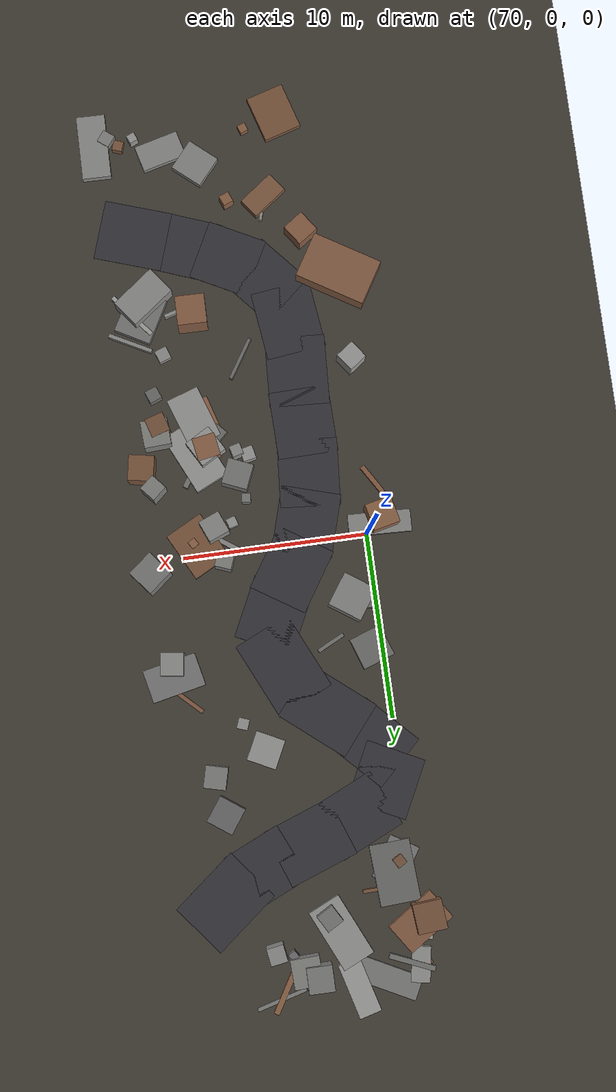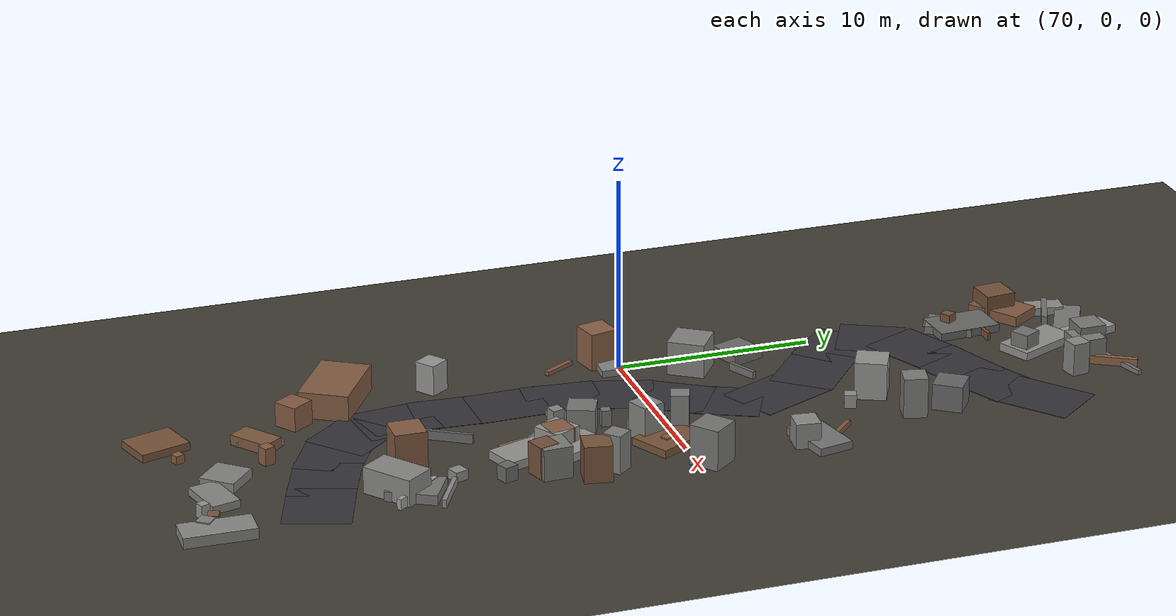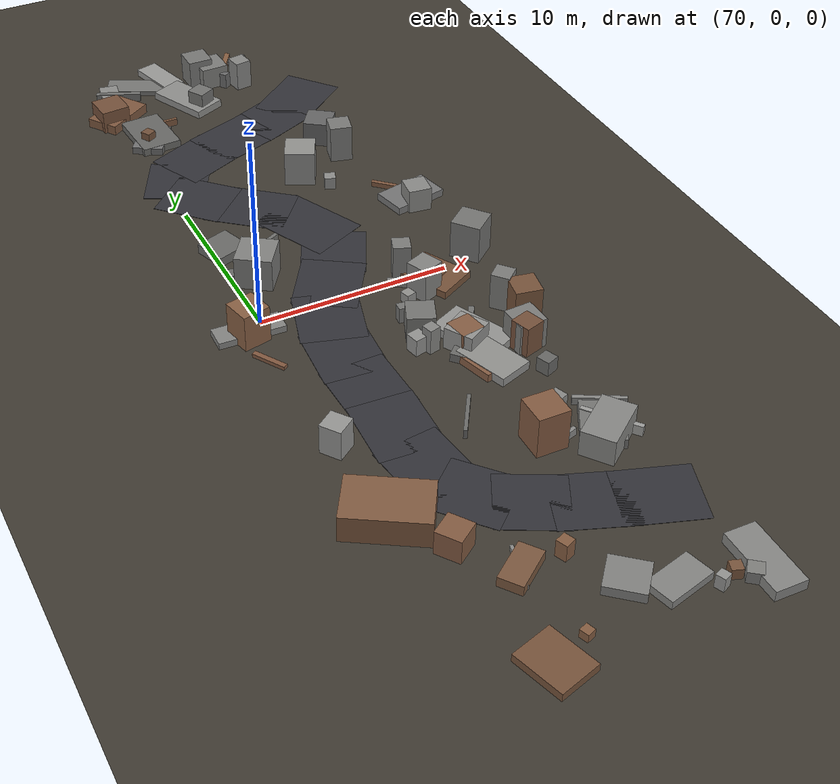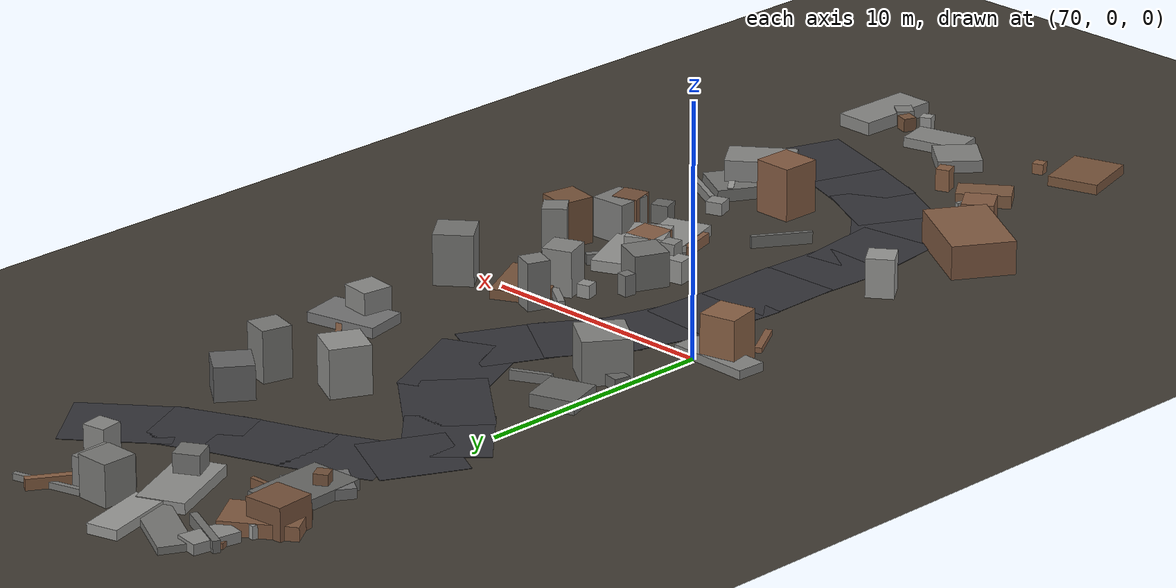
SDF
<sdf version="1.6">
 <world name="navitas_arena">
  <model name="ground_plane">
   <static>true</static>
   <link name="link">
    <collision name="collision">
     <geometry><plane><normal>0 0 1</normal><size>400 400</size></plane></geometry>
     <surface><friction><ode><mu>0.620</mu><mu2>0.620</mu2></ode></friction></surface>
    </collision>
    <visual name="visual">
     <cast_shadows>false</cast_shadows>
     <geometry><plane><normal>0 0 1</normal><size>400 400</size></plane></geometry>
     <material><ambient>0.250 0.230 0.200 1</ambient><diffuse>0.250 0.230 0.200 1</diffuse></material>
    </visual>
   </link>
  </model>
  <model name="road_zor_1_4">
   <static>true</static>
   <pose>80.456 -18.160 0.040 0 0 2.815</pose>
   <link name="link">
    <collision name="col"><geometry><box><size>3.739 3.280 0.020</size></box></geometry></collision>
    <visual name="vis">
     <geometry><box><size>3.739 3.280 0.020</size></box></geometry>
     <material><ambient>0.20 0.20 0.22 1</ambient><diffuse>0.20 0.20 0.22 1</diffuse></material>
    </visual>
   </link>
  </model>
  <model name="road_zor_1_5">
   <static>true</static>
   <pose>77.808 -17.214 0.040 0 0 2.781</pose>
   <link name="link">
    <collision name="col"><geometry><box><size>3.685 3.280 0.020</size></box></geometry></collision>
    <visual name="vis">
     <geometry><box><size>3.685 3.280 0.020</size></box></geometry>
     <material><ambient>0.20 0.20 0.22 1</ambient><diffuse>0.20 0.20 0.22 1</diffuse></material>
    </visual>
   </link>
  </model>
  <model name="road_zor_1_6">
   <static>true</static>
   <pose>75.438 -16.169 0.040 0 0 2.663</pose>
   <link name="link">
    <collision name="col"><geometry><box><size>3.304 3.280 0.020</size></box></geometry></collision>
    <visual name="vis">
     <geometry><box><size>3.304 3.280 0.020</size></box></geometry>
     <material><ambient>0.20 0.20 0.22 1</ambient><diffuse>0.20 0.20 0.22 1</diffuse></material>
    </visual>
   </link>
  </model>
  <model name="road_zor_1_7">
   <static>true</static>
   <pose>73.566 -14.688 0.040 0 0 2.285</pose>
   <link name="link">
    <collision name="col"><geometry><box><size>3.356 3.280 0.020</size></box></geometry></collision>
    <visual name="vis">
     <geometry><box><size>3.356 3.280 0.020</size></box></geometry>
     <material><ambient>0.20 0.20 0.22 1</ambient><diffuse>0.20 0.20 0.22 1</diffuse></material>
    </visual>
   </link>
  </model>
  <model name="road_zor_1_8">
   <static>true</static>
   <pose>72.591 -12.340 0.040 0 0 1.690</pose>
   <link name="link">
    <collision name="col"><geometry><box><size>3.760 3.280 0.020</size></box></geometry></collision>
    <visual name="vis">
     <geometry><box><size>3.760 3.280 0.020</size></box></geometry>
     <material><ambient>0.20 0.20 0.22 1</ambient><diffuse>0.20 0.20 0.22 1</diffuse></material>
    </visual>
   </link>
  </model>
  <model name="road_zor_1_9">
   <static>true</static>
   <pose>72.497 -9.460 0.040 0 0 1.518</pose>
   <link name="link">
    <collision name="col"><geometry><box><size>3.824 3.280 0.020</size></box></geometry></collision>
    <visual name="vis">
     <geometry><box><size>3.824 3.280 0.020</size></box></geometry>
     <material><ambient>0.20 0.20 0.22 1</ambient><diffuse>0.20 0.20 0.22 1</diffuse></material>
    </visual>
   </link>
  </model>
  <model name="road_zor_1_10">
   <static>true</static>
   <pose>72.547 -6.600 0.040 0 0 1.590</pose>
   <link name="link">
    <collision name="col"><geometry><box><size>3.701 3.280 0.020</size></box></geometry></collision>
    <visual name="vis">
     <geometry><box><size>3.701 3.280 0.020</size></box></geometry>
     <material><ambient>0.20 0.20 0.22 1</ambient><diffuse>0.20 0.20 0.22 1</diffuse></material>
    </visual>
   </link>
  </model>
  <model name="road_zor_1_11">
   <static>true</static>
   <pose>72.631 -3.800 0.040 0 0 1.492</pose>
   <link name="link">
    <collision name="col"><geometry><box><size>3.709 3.280 0.020</size></box></geometry></collision>
    <visual name="vis">
     <geometry><box><size>3.709 3.280 0.020</size></box></geometry>
     <material><ambient>0.20 0.20 0.22 1</ambient><diffuse>0.20 0.20 0.22 1</diffuse></material>
    </visual>
   </link>
  </model>
  <model name="road_zor_1_12">
   <static>true</static>
   <pose>73.123 -1.117 0.040 0 0 1.282</pose>
   <link name="link">
    <collision name="col"><geometry><box><size>3.577 3.280 0.020</size></box></geometry></collision>
    <visual name="vis">
     <geometry><box><size>3.577 3.280 0.020</size></box></geometry>
     <material><ambient>0.20 0.20 0.22 1</ambient><diffuse>0.20 0.20 0.22 1</diffuse></material>
    </visual>
   </link>
  </model>
  <model name="road_zor_1_13">
   <static>true</static>
   <pose>74.257 1.333 0.040 0 0 0.997</pose>
   <link name="link">
    <collision name="col"><geometry><box><size>3.678 3.280 0.020</size></box></geometry></collision>
    <visual name="vis">
     <geometry><box><size>3.678 3.280 0.020</size></box></geometry>
     <material><ambient>0.20 0.20 0.22 1</ambient><diffuse>0.20 0.20 0.22 1</diffuse></material>
    </visual>
   </link>
  </model>
  <model name="road_zor_1_14">
   <static>true</static>
   <pose>75.582 3.667 0.040 0 0 1.116</pose>
   <link name="link">
    <collision name="col"><geometry><box><size>3.498 3.280 0.020</size></box></geometry></collision>
    <visual name="vis">
     <geometry><box><size>3.498 3.280 0.020</size></box></geometry>
     <material><ambient>0.20 0.20 0.22 1</ambient><diffuse>0.20 0.20 0.22 1</diffuse></material>
    </visual>
   </link>
  </model>
  <model name="road_zor_1_15">
   <static>true</static>
   <pose>75.407 6.453 0.040 0 0 2.002</pose>
   <link name="link">
    <collision name="col"><geometry><box><size>4.466 3.280 0.020</size></box></geometry></collision>
    <visual name="vis">
     <geometry><box><size>4.466 3.280 0.020</size></box></geometry>
     <material><ambient>0.20 0.20 0.22 1</ambient><diffuse>0.20 0.20 0.22 1</diffuse></material>
    </visual>
   </link>
  </model>
  <model name="road_zor_1_16">
   <static>true</static>
   <pose>73.388 9.124 0.040 0 0 2.452</pose>
   <link name="link">
    <collision name="col"><geometry><box><size>4.203 3.280 0.020</size></box></geometry></collision>
    <visual name="vis">
     <geometry><box><size>4.203 3.280 0.020</size></box></geometry>
     <material><ambient>0.20 0.20 0.22 1</ambient><diffuse>0.20 0.20 0.22 1</diffuse></material>
    </visual>
   </link>
  </model>
  <model name="road_zor_1_17">
   <static>true</static>
   <pose>71.168 11.153 0.040 0 0 2.340</pose>
   <link name="link">
    <collision name="col"><geometry><box><size>3.622 3.280 0.020</size></box></geometry></collision>
    <visual name="vis">
     <geometry><box><size>3.622 3.280 0.020</size></box></geometry>
     <material><ambient>0.20 0.20 0.22 1</ambient><diffuse>0.20 0.20 0.22 1</diffuse></material>
    </visual>
   </link>
  </model>
  <model name="road_zor_1_18">
   <static>true</static>
   <pose>70.772 13.228 0.040 0 0 1.106</pose>
   <link name="link">
    <collision name="col"><geometry><box><size>3.354 3.280 0.020</size></box></geometry></collision>
    <visual name="vis">
     <geometry><box><size>3.354 3.280 0.020</size></box></geometry>
     <material><ambient>0.20 0.20 0.22 1</ambient><diffuse>0.20 0.20 0.22 1</diffuse></material>
    </visual>
   </link>
  </model>
  <model name="road_zor_1_19">
   <static>true</static>
   <pose>72.580 14.896 0.040 0 0 0.427</pose>
   <link name="link">
    <collision name="col"><geometry><box><size>3.663 3.280 0.020</size></box></geometry></collision>
    <visual name="vis">
     <geometry><box><size>3.663 3.280 0.020</size></box></geometry>
     <material><ambient>0.20 0.20 0.22 1</ambient><diffuse>0.20 0.20 0.22 1</diffuse></material>
    </visual>
   </link>
  </model>
  <model name="road_zor_1_20">
   <static>true</static>
   <pose>75.253 15.986 0.040 0 0 0.351</pose>
   <link name="link">
    <collision name="col"><geometry><box><size>3.914 3.280 0.020</size></box></geometry></collision>
    <visual name="vis">
     <geometry><box><size>3.914 3.280 0.020</size></box></geometry>
     <material><ambient>0.20 0.20 0.22 1</ambient><diffuse>0.20 0.20 0.22 1</diffuse></material>
    </visual>
   </link>
  </model>
  <model name="road_zor_1_21">
   <static>true</static>
   <pose>77.778 17.002 0.040 0 0 0.422</pose>
   <link name="link">
    <collision name="col"><geometry><box><size>3.333 3.280 0.020</size></box></geometry></collision>
    <visual name="vis">
     <geometry><box><size>3.333 3.280 0.020</size></box></geometry>
     <material><ambient>0.20 0.20 0.22 1</ambient><diffuse>0.20 0.20 0.22 1</diffuse></material>
    </visual>
   </link>
  </model>
  <model name="road_zor_1_22">
   <static>true</static>
   <pose>80.163 18.516 0.040 0 0 0.672</pose>
   <link name="link">
    <collision name="col"><geometry><box><size>4.161 3.280 0.020</size></box></geometry></collision>
    <visual name="vis">
     <geometry><box><size>4.161 3.280 0.020</size></box></geometry>
     <material><ambient>0.20 0.20 0.22 1</ambient><diffuse>0.20 0.20 0.22 1</diffuse></material>
    </visual>
   </link>
  </model>
  <model name="deb_zor_0">
   <static>true</static>
   <pose>73.706 23.845 0.198 0 0 1.835</pose>
   <link name="link">
    <collision name="col"><geometry><box><size>2.981 1.236 0.396</size></box></geometry></collision>
    <visual name="vis">
     <geometry><box><size>2.981 1.236 0.396</size></box></geometry>
     <material><ambient>0.60 0.60 0.59 1</ambient><diffuse>0.60 0.60 0.59 1</diffuse></material>
    </visual>
   </link>
  </model>
  <model name="deb_zor_1">
   <static>true</static>
   <pose>80.424 -7.253 0.815 0 0 1.867</pose>
   <link name="link">
    <collision name="col"><geometry><box><size>1.050 1.050 1.629</size></box></geometry></collision>
    <visual name="vis">
     <geometry><box><size>1.050 1.050 1.629</size></box></geometry>
     <material><ambient>0.46 0.32 0.23 1</ambient><diffuse>0.46 0.32 0.23 1</diffuse></material>
    </visual>
   </link>
  </model>
  <model name="deb_zor_2">
   <static>true</static>
   <pose>73.076 -19.157 0.118 0 0 1.321</pose>
   <link name="link">
    <collision name="col"><geometry><box><size>2.244 0.164 0.235</size></box></geometry></collision>
    <visual name="vis">
     <geometry><box><size>2.244 0.164 0.235</size></box></geometry>
     <material><ambient>0.54 0.54 0.53 1</ambient><diffuse>0.54 0.54 0.53 1</diffuse></material>
    </visual>
   </link>
  </model>
  <model name="deb_zor_10">
   <static>true</static>
   <pose>78.607 -5.482 0.224 0 0 2.003</pose>
   <link name="link">
    <collision name="col"><geometry><box><size>3.492 1.981 0.448</size></box></geometry></collision>
    <visual name="vis">
     <geometry><box><size>3.492 1.981 0.448</size></box></geometry>
     <material><ambient>0.58 0.58 0.57 1</ambient><diffuse>0.58 0.58 0.57 1</diffuse></material>
    </visual>
   </link>
  </model>
  <model name="deb_zor_15">
   <static>true</static>
   <pose>70.560 6.093 0.255 0 0 0.334</pose>
   <link name="link">
    <collision name="col"><geometry><box><size>1.816 1.755 0.510</size></box></geometry></collision>
    <visual name="vis">
     <geometry><box><size>1.816 1.755 0.510</size></box></geometry>
     <material><ambient>0.42 0.42 0.41 1</ambient><diffuse>0.42 0.42 0.41 1</diffuse></material>
    </visual>
   </link>
  </model>
  <model name="deb_zor_24">
   <static>true</static>
   <pose>71.834 -23.963 0.201 0 0 1.858</pose>
   <link name="link">
    <collision name="col"><geometry><box><size>2.560 2.100 0.402</size></box></geometry></collision>
    <visual name="vis">
     <geometry><box><size>2.560 2.100 0.402</size></box></geometry>
     <material><ambient>0.47 0.33 0.23 1</ambient><diffuse>0.47 0.33 0.23 1</diffuse></material>
    </visual>
   </link>
  </model>
  <model name="deb_zor_38">
   <static>true</static>
   <pose>75.502 -10.473 0.241 0 0 1.004</pose>
   <link name="link">
    <collision name="col"><geometry><box><size>2.420 0.179 0.482</size></box></geometry></collision>
    <visual name="vis">
     <geometry><box><size>2.420 0.179 0.482</size></box></geometry>
     <material><ambient>0.42 0.42 0.41 1</ambient><diffuse>0.42 0.42 0.41 1</diffuse></material>
    </visual>
   </link>
  </model>
  <model name="deb_zor_44">
   <static>true</static>
   <pose>77.269 -6.570 0.222 0 0 0.747</pose>
   <link name="link">
    <collision name="col"><geometry><box><size>0.738 0.738 0.445</size></box></geometry></collision>
    <visual name="vis">
     <geometry><box><size>0.738 0.738 0.445</size></box></geometry>
     <material><ambient>0.42 0.42 0.41 1</ambient><diffuse>0.42 0.42 0.41 1</diffuse></material>
    </visual>
   </link>
  </model>
  <model name="deb_zor_47">
   <static>true</static>
   <pose>77.848 23.902 0.127 0 0 0.268</pose>
   <link name="link">
    <collision name="col"><geometry><box><size>2.798 0.203 0.253</size></box></geometry></collision>
    <visual name="vis">
     <geometry><box><size>2.798 0.203 0.253</size></box></geometry>
     <material><ambient>0.48 0.48 0.47 1</ambient><diffuse>0.48 0.48 0.47 1</diffuse></material>
    </visual>
   </link>
  </model>
  <model name="deb_zor_53">
   <static>true</static>
   <pose>69.098 -0.871 0.972 0 0 0.225</pose>
   <link name="link">
    <collision name="col"><geometry><box><size>1.460 1.460 1.943</size></box></geometry></collision>
    <visual name="vis">
     <geometry><box><size>1.460 1.460 1.943</size></box></geometry>
     <material><ambient>0.54 0.38 0.27 1</ambient><diffuse>0.54 0.38 0.27 1</diffuse></material>
    </visual>
   </link>
  </model>
  <model name="deb_zor_56">
   <static>true</static>
   <pose>73.651 -23.292 0.215 0 0 1.920</pose>
   <link name="link">
    <collision name="col"><geometry><box><size>0.452 0.452 0.431</size></box></geometry></collision>
    <visual name="vis">
     <geometry><box><size>0.452 0.452 0.431</size></box></geometry>
     <material><ambient>0.53 0.37 0.26 1</ambient><diffuse>0.53 0.37 0.26 1</diffuse></material>
    </visual>
   </link>
  </model>
  <model name="deb_zor_58">
   <static>true</static>
   <pose>71.288 -17.050 0.618 0 0 0.610</pose>
   <link name="link">
    <collision name="col"><geometry><box><size>1.266 1.266 1.237</size></box></geometry></collision>
    <visual name="vis">
     <geometry><box><size>1.266 1.266 1.237</size></box></geometry>
     <material><ambient>0.52 0.36 0.26 1</ambient><diffuse>0.52 0.36 0.26 1</diffuse></material>
    </visual>
   </link>
  </model>
  <model name="deb_zor_60">
   <static>true</static>
   <pose>77.800 -0.667 0.169 0 0 2.538</pose>
   <link name="link">
    <collision name="col"><geometry><box><size>2.429 0.277 0.337</size></box></geometry></collision>
    <visual name="vis">
     <geometry><box><size>2.429 0.277 0.337</size></box></geometry>
     <material><ambient>0.52 0.52 0.51 1</ambient><diffuse>0.52 0.52 0.51 1</diffuse></material>
    </visual>
   </link>
  </model>
  <model name="deb_zor_62">
   <static>true</static>
   <pose>69.243 -2.937 0.103 0 0 2.116</pose>
   <link name="link">
    <collision name="col"><geometry><box><size>1.807 0.271 0.205</size></box></geometry></collision>
    <visual name="vis">
     <geometry><box><size>1.807 0.271 0.205</size></box></geometry>
     <material><ambient>0.51 0.35 0.25 1</ambient><diffuse>0.51 0.35 0.25 1</diffuse></material>
    </visual>
   </link>
  </model>
  <model name="deb_zor_65">
   <static>true</static>
   <pose>78.118 -1.363 0.920 0 0 1.961</pose>
   <link name="link">
    <collision name="col"><geometry><box><size>1.206 1.206 1.840</size></box></geometry></collision>
    <visual name="vis">
     <geometry><box><size>1.206 1.206 1.840</size></box></geometry>
     <material><ambient>0.52 0.52 0.51 1</ambient><diffuse>0.52 0.52 0.51 1</diffuse></material>
    </visual>
   </link>
  </model>
  <model name="deb_zor_71">
   <static>true</static>
   <pose>76.193 -2.792 0.419 0 0 1.466</pose>
   <link name="link">
    <collision name="col"><geometry><box><size>0.484 0.484 0.838</size></box></geometry></collision>
    <visual name="vis">
     <geometry><box><size>0.484 0.484 0.838</size></box></geometry>
     <material><ambient>0.46 0.46 0.45 1</ambient><diffuse>0.46 0.46 0.45 1</diffuse></material>
    </visual>
   </link>
  </model>
  <model name="deb_zor_80">
   <static>true</static>
   <pose>69.569 20.562 0.634 0 0 1.659</pose>
   <link name="link">
    <collision name="col"><geometry><box><size>1.578 1.578 1.267</size></box></geometry></collision>
    <visual name="vis">
     <geometry><box><size>1.578 1.578 1.267</size></box></geometry>
     <material><ambient>0.46 0.32 0.23 1</ambient><diffuse>0.46 0.32 0.23 1</diffuse></material>
    </visual>
   </link>
  </model>
  <model name="deb_zor_82">
   <static>true</static>
   <pose>72.129 23.532 0.142 0 0 2.669</pose>
   <link name="link">
    <collision name="col"><geometry><box><size>3.473 1.305 0.283</size></box></geometry></collision>
    <visual name="vis">
     <geometry><box><size>3.473 1.305 0.283</size></box></geometry>
     <material><ambient>0.47 0.47 0.46 1</ambient><diffuse>0.47 0.47 0.46 1</diffuse></material>
    </visual>
   </link>
  </model>
  <model name="deb_zor_92">
   <static>true</static>
   <pose>72.712 5.568 0.197 0 0 0.461</pose>
   <link name="link">
    <collision name="col"><geometry><box><size>1.613 0.202 0.393</size></box></geometry></collision>
    <visual name="vis">
     <geometry><box><size>1.613 0.202 0.393</size></box></geometry>
     <material><ambient>0.44 0.44 0.43 1</ambient><diffuse>0.44 0.44 0.43 1</diffuse></material>
    </visual>
   </link>
  </model>
  <model name="deb_zor_96">
   <static>true</static>
   <pose>77.974 9.242 0.334 0 0 1.225</pose>
   <link name="link">
    <collision name="col"><geometry><box><size>0.595 0.595 0.668</size></box></geometry></collision>
    <visual name="vis">
     <geometry><box><size>0.595 0.595 0.668</size></box></geometry>
     <material><ambient>0.56 0.56 0.55 1</ambient><diffuse>0.56 0.56 0.55 1</diffuse></material>
    </visual>
   </link>
  </model>
  <model name="deb_zor_97">
   <static>true</static>
   <pose>81.306 5.599 0.646 0 0 1.445</pose>
   <link name="link">
    <collision name="col"><geometry><box><size>1.233 1.233 1.292</size></box></geometry></collision>
    <visual name="vis">
     <geometry><box><size>1.233 1.233 1.292</size></box></geometry>
     <material><ambient>0.54 0.54 0.53 1</ambient><diffuse>0.54 0.54 0.53 1</diffuse></material>
    </visual>
   </link>
  </model>
  <model name="deb_zor_98">
   <static>true</static>
   <pose>79.656 -11.239 0.252 0 0 0.351</pose>
   <link name="link">
    <collision name="col"><geometry><box><size>0.690 0.690 0.504</size></box></geometry></collision>
    <visual name="vis">
     <geometry><box><size>0.690 0.690 0.504</size></box></geometry>
     <material><ambient>0.54 0.54 0.53 1</ambient><diffuse>0.54 0.54 0.53 1</diffuse></material>
    </visual>
   </link>
  </model>
  <model name="deb_zor_99">
   <static>true</static>
   <pose>81.958 -23.306 0.269 0 0 1.554</pose>
   <link name="link">
    <collision name="col"><geometry><box><size>3.511 1.578 0.538</size></box></geometry></collision>
    <visual name="vis">
     <geometry><box><size>3.511 1.578 0.538</size></box></geometry>
     <material><ambient>0.53 0.53 0.52 1</ambient><diffuse>0.53 0.53 0.52 1</diffuse></material>
    </visual>
   </link>
  </model>
  <model name="deb_zor_100">
   <static>true</static>
   <pose>79.769 11.843 1.027 0 0 1.324</pose>
   <link name="link">
    <collision name="col"><geometry><box><size>1.194 1.194 2.054</size></box></geometry></collision>
    <visual name="vis">
     <geometry><box><size>1.194 1.194 2.054</size></box></geometry>
     <material><ambient>0.48 0.48 0.47 1</ambient><diffuse>0.48 0.48 0.47 1</diffuse></material>
    </visual>
   </link>
  </model>
  <model name="deb_zor_103">
   <static>true</static>
   <pose>72.037 18.867 0.196 0 0 0.024</pose>
   <link name="link">
    <collision name="col"><geometry><box><size>1.611 0.183 0.393</size></box></geometry></collision>
    <visual name="vis">
     <geometry><box><size>1.611 0.183 0.393</size></box></geometry>
     <material><ambient>0.47 0.33 0.23 1</ambient><diffuse>0.47 0.33 0.23 1</diffuse></material>
    </visual>
   </link>
  </model>
  <model name="deb_zor_107">
   <static>true</static>
   <pose>80.459 -9.057 0.385 0 0 1.938</pose>
   <link name="link">
    <collision name="col"><geometry><box><size>0.697 0.697 0.770</size></box></geometry></collision>
    <visual name="vis">
     <geometry><box><size>0.697 0.697 0.770</size></box></geometry>
     <material><ambient>0.41 0.41 0.40 1</ambient><diffuse>0.41 0.41 0.40 1</diffuse></material>
    </visual>
   </link>
  </model>
  <model name="deb_zor_110">
   <static>true</static>
   <pose>70.056 22.309 0.114 0 0 1.939</pose>
   <link name="link">
    <collision name="col"><geometry><box><size>1.661 0.205 0.228</size></box></geometry></collision>
    <visual name="vis">
     <geometry><box><size>1.661 0.205 0.228</size></box></geometry>
     <material><ambient>0.47 0.33 0.24 1</ambient><diffuse>0.47 0.33 0.24 1</diffuse></material>
    </visual>
   </link>
  </model>
  <model name="deb_zor_113">
   <static>true</static>
   <pose>76.535 -21.654 0.246 0 0 2.430</pose>
   <link name="link">
    <collision name="col"><geometry><box><size>1.857 1.798 0.491</size></box></geometry></collision>
    <visual name="vis">
     <geometry><box><size>1.857 1.798 0.491</size></box></geometry>
     <material><ambient>0.51 0.51 0.50 1</ambient><diffuse>0.51 0.51 0.50 1</diffuse></material>
    </visual>
   </link>
  </model>
  <model name="deb_zor_114">
   <static>true</static>
   <pose>73.045 -19.354 0.258 0 0 0.637</pose>
   <link name="link">
    <collision name="col"><geometry><box><size>2.191 1.179 0.516</size></box></geometry></collision>
    <visual name="vis">
     <geometry><box><size>2.191 1.179 0.516</size></box></geometry>
     <material><ambient>0.49 0.35 0.25 1</ambient><diffuse>0.49 0.35 0.25 1</diffuse></material>
    </visual>
   </link>
  </model>
  <model name="deb_zor_116">
   <static>true</static>
   <pose>79.130 -0.568 0.198 0 0 2.048</pose>
   <link name="link">
    <collision name="col"><geometry><box><size>2.794 2.196 0.396</size></box></geometry></collision>
    <visual name="vis">
     <geometry><box><size>2.794 2.196 0.396</size></box></geometry>
     <material><ambient>0.47 0.33 0.23 1</ambient><diffuse>0.47 0.33 0.23 1</diffuse></material>
    </visual>
   </link>
  </model>
  <model name="deb_zor_118">
   <static>true</static>
   <pose>77.809 -13.166 1.071 0 0 1.555</pose>
   <link name="link">
    <collision name="col"><geometry><box><size>1.591 1.591 2.143</size></box></geometry></collision>
    <visual name="vis">
     <geometry><box><size>1.591 1.591 2.143</size></box></geometry>
     <material><ambient>0.52 0.36 0.26 1</ambient><diffuse>0.52 0.36 0.26 1</diffuse></material>
    </visual>
   </link>
  </model>
  <model name="deb_zor_119">
   <static>true</static>
   <pose>75.098 -19.313 0.448 0 0 1.955</pose>
   <link name="link">
    <collision name="col"><geometry><box><size>0.570 0.570 0.895</size></box></geometry></collision>
    <visual name="vis">
     <geometry><box><size>0.570 0.570 0.895</size></box></geometry>
     <material><ambient>0.53 0.37 0.26 1</ambient><diffuse>0.53 0.37 0.26 1</diffuse></material>
    </visual>
   </link>
  </model>
  <model name="deb_zor_126">
   <static>true</static>
   <pose>81.067 7.312 0.139 0 0 2.372</pose>
   <link name="link">
    <collision name="col"><geometry><box><size>2.882 0.226 0.278</size></box></geometry></collision>
    <visual name="vis">
     <geometry><box><size>2.882 0.226 0.278</size></box></geometry>
     <material><ambient>0.50 0.35 0.25 1</ambient><diffuse>0.50 0.35 0.25 1</diffuse></material>
    </visual>
   </link>
  </model>
  <model name="deb_zor_134">
   <static>true</static>
   <pose>77.802 21.422 0.839 0 0 0.163</pose>
   <link name="link">
    <collision name="col"><geometry><box><size>0.923 0.923 1.678</size></box></geometry></collision>
    <visual name="vis">
     <geometry><box><size>0.923 0.923 1.678</size></box></geometry>
     <material><ambient>0.53 0.53 0.52 1</ambient><diffuse>0.53 0.53 0.52 1</diffuse></material>
    </visual>
   </link>
  </model>
  <model name="deb_zor_139">
   <static>true</static>
   <pose>70.904 17.567 0.200 0 0 1.013</pose>
   <link name="link">
    <collision name="col"><geometry><box><size>2.411 1.684 0.400</size></box></geometry></collision>
    <visual name="vis">
     <geometry><box><size>2.411 1.684 0.400</size></box></geometry>
     <material><ambient>0.45 0.45 0.45 1</ambient><diffuse>0.45 0.45 0.45 1</diffuse></material>
    </visual>
   </link>
  </model>
  <model name="deb_zor_141">
   <static>true</static>
   <pose>70.705 17.517 0.420 0 0 0.527</pose>
   <link name="link">
    <collision name="col"><geometry><box><size>0.557 0.557 0.839</size></box></geometry></collision>
    <visual name="vis">
     <geometry><box><size>0.557 0.557 0.839</size></box></geometry>
     <material><ambient>0.45 0.32 0.23 1</ambient><diffuse>0.45 0.32 0.23 1</diffuse></material>
    </visual>
   </link>
  </model>
  <model name="deb_zor_142">
   <static>true</static>
   <pose>81.071 -3.850 0.976 0 0 2.287</pose>
   <link name="link">
    <collision name="col"><geometry><box><size>0.961 0.961 1.952</size></box></geometry></collision>
    <visual name="vis">
     <geometry><box><size>0.961 0.961 1.952</size></box></geometry>
     <material><ambient>0.49 0.49 0.48 1</ambient><diffuse>0.49 0.49 0.48 1</diffuse></material>
    </visual>
   </link>
  </model>
  <model name="deb_zor_143">
   <static>true</static>
   <pose>79.350 -0.748 0.235 0 0 2.130</pose>
   <link name="link">
    <collision name="col"><geometry><box><size>0.437 0.437 0.471</size></box></geometry></collision>
    <visual name="vis">
     <geometry><box><size>0.437 0.437 0.471</size></box></geometry>
     <material><ambient>0.55 0.38 0.27 1</ambient><diffuse>0.55 0.38 0.27 1</diffuse></material>
    </visual>
   </link>
  </model>
  <model name="deb_zor_149">
   <static>true</static>
   <pose>75.786 -5.162 0.455 0 0 1.782</pose>
   <link name="link">
    <collision name="col"><geometry><box><size>0.714 0.714 0.911</size></box></geometry></collision>
    <visual name="vis">
     <geometry><box><size>0.714 0.714 0.911</size></box></geometry>
     <material><ambient>0.58 0.58 0.57 1</ambient><diffuse>0.58 0.58 0.57 1</diffuse></material>
    </visual>
   </link>
  </model>
  <model name="deb_zor_152">
   <static>true</static>
   <pose>74.282 20.858 0.213 0 0 2.000</pose>
   <link name="link">
    <collision name="col"><geometry><box><size>3.533 1.846 0.426</size></box></geometry></collision>
    <visual name="vis">
     <geometry><box><size>3.533 1.846 0.426</size></box></geometry>
     <material><ambient>0.56 0.56 0.55 1</ambient><diffuse>0.56 0.56 0.55 1</diffuse></material>
    </visual>
   </link>
  </model>
  <model name="deb_zor_154">
   <static>true</static>
   <pose>81.345 -12.136 0.206 0 0 2.655</pose>
   <link name="link">
    <collision name="col"><geometry><box><size>2.500 0.217 0.412</size></box></geometry></collision>
    <visual name="vis">
     <geometry><box><size>2.500 0.217 0.412</size></box></geometry>
     <material><ambient>0.53 0.53 0.52 1</ambient><diffuse>0.53 0.53 0.52 1</diffuse></material>
    </visual>
   </link>
  </model>
  <model name="deb_zor_158">
   <static>true</static>
   <pose>77.620 23.546 0.216 0 0 1.028</pose>
   <link name="link">
    <collision name="col"><geometry><box><size>2.436 0.295 0.433</size></box></geometry></collision>
    <visual name="vis">
     <geometry><box><size>2.436 0.295 0.433</size></box></geometry>
     <material><ambient>0.53 0.37 0.26 1</ambient><diffuse>0.53 0.37 0.26 1</diffuse></material>
    </visual>
   </link>
  </model>
  <model name="deb_zor_166">
   <static>true</static>
   <pose>81.807 0.663 1.028 0 0 0.677</pose>
   <link name="link">
    <collision name="col"><geometry><box><size>1.563 1.563 2.056</size></box></geometry></collision>
    <visual name="vis">
     <geometry><box><size>1.563 1.563 2.056</size></box></geometry>
     <material><ambient>0.46 0.46 0.45 1</ambient><diffuse>0.46 0.46 0.45 1</diffuse></material>
    </visual>
   </link>
  </model>
  <model name="deb_zor_175">
   <static>true</static>
   <pose>78.006 -5.820 0.589 0 0 2.088</pose>
   <link name="link">
    <collision name="col"><geometry><box><size>1.539 1.539 1.178</size></box></geometry></collision>
    <visual name="vis">
     <geometry><box><size>1.539 1.539 1.178</size></box></geometry>
     <material><ambient>0.58 0.58 0.57 1</ambient><diffuse>0.58 0.58 0.57 1</diffuse></material>
    </visual>
   </link>
  </model>
  <model name="deb_zor_178">
   <static>true</static>
   <pose>69.204 -0.530 0.175 0 0 3.106</pose>
   <link name="link">
    <collision name="col"><geometry><box><size>3.415 1.196 0.351</size></box></geometry></collision>
    <visual name="vis">
     <geometry><box><size>3.415 1.196 0.351</size></box></geometry>
     <material><ambient>0.52 0.52 0.51 1</ambient><diffuse>0.52 0.52 0.51 1</diffuse></material>
    </visual>
   </link>
  </model>
  <model name="deb_zor_181">
   <static>true</static>
   <pose>79.785 -23.473 0.355 0 0 1.971</pose>
   <link name="link">
    <collision name="col"><geometry><box><size>0.465 0.465 0.711</size></box></geometry></collision>
    <visual name="vis">
     <geometry><box><size>0.465 0.465 0.711</size></box></geometry>
     <material><ambient>0.58 0.58 0.57 1</ambient><diffuse>0.58 0.58 0.57 1</diffuse></material>
    </visual>
   </link>
  </model>
  <model name="deb_zor_182">
   <static>true</static>
   <pose>78.443 -7.558 0.227 0 0 1.899</pose>
   <link name="link">
    <collision name="col"><geometry><box><size>2.937 1.824 0.453</size></box></geometry></collision>
    <visual name="vis">
     <geometry><box><size>2.937 1.824 0.453</size></box></geometry>
     <material><ambient>0.57 0.57 0.56 1</ambient><diffuse>0.57 0.57 0.56 1</diffuse></material>
    </visual>
   </link>
  </model>
  <model name="deb_zor_184">
   <static>true</static>
   <pose>81.580 -5.015 0.935 0 0 2.961</pose>
   <link name="link">
    <collision name="col"><geometry><box><size>1.379 1.379 1.870</size></box></geometry></collision>
    <visual name="vis">
     <geometry><box><size>1.379 1.379 1.870</size></box></geometry>
     <material><ambient>0.47 0.33 0.23 1</ambient><diffuse>0.47 0.33 0.23 1</diffuse></material>
    </visual>
   </link>
  </model>
  <model name="deb_zor_186">
   <static>true</static>
   <pose>74.786 19.976 0.588 0 0 2.092</pose>
   <link name="link">
    <collision name="col"><geometry><box><size>1.007 1.007 1.176</size></box></geometry></collision>
    <visual name="vis">
     <geometry><box><size>1.007 1.007 1.176</size></box></geometry>
     <material><ambient>0.45 0.45 0.44 1</ambient><diffuse>0.45 0.45 0.44 1</diffuse></material>
    </visual>
   </link>
  </model>
  <model name="deb_zor_189">
   <static>true</static>
   <pose>69.529 -9.606 0.787 0 0 0.624</pose>
   <link name="link">
    <collision name="col"><geometry><box><size>1.102 1.102 1.573</size></box></geometry></collision>
    <visual name="vis">
     <geometry><box><size>1.102 1.102 1.573</size></box></geometry>
     <material><ambient>0.59 0.59 0.58 1</ambient><diffuse>0.59 0.59 0.58 1</diffuse></material>
    </visual>
   </link>
  </model>
  <model name="deb_zor_202">
   <static>true</static>
   <pose>70.165 3.693 0.232 0 0 2.937</pose>
   <link name="link">
    <collision name="col"><geometry><box><size>0.636 0.636 0.464</size></box></geometry></collision>
    <visual name="vis">
     <geometry><box><size>0.636 0.636 0.464</size></box></geometry>
     <material><ambient>0.41 0.41 0.40 1</ambient><diffuse>0.41 0.41 0.40 1</diffuse></material>
    </visual>
   </link>
  </model>
  <model name="deb_zor_203">
   <static>true</static>
   <pose>80.624 -23.184 0.273 0 0 1.233</pose>
   <link name="link">
    <collision name="col"><geometry><box><size>0.544 0.544 0.547</size></box></geometry></collision>
    <visual name="vis">
     <geometry><box><size>0.544 0.544 0.547</size></box></geometry>
     <material><ambient>0.48 0.34 0.24 1</ambient><diffuse>0.48 0.34 0.24 1</diffuse></material>
    </visual>
   </link>
  </model>
  <model name="deb_zor_207">
   <static>true</static>
   <pose>70.021 20.833 0.268 0 0 0.591</pose>
   <link name="link">
    <collision name="col"><geometry><box><size>2.907 1.842 0.536</size></box></geometry></collision>
    <visual name="vis">
     <geometry><box><size>2.907 1.842 0.536</size></box></geometry>
     <material><ambient>0.50 0.35 0.25 1</ambient><diffuse>0.50 0.35 0.25 1</diffuse></material>
    </visual>
   </link>
  </model>
  <model name="deb_zor_214">
   <static>true</static>
   <pose>78.537 -13.572 0.206 0 0 0.281</pose>
   <link name="link">
    <collision name="col"><geometry><box><size>1.585 0.189 0.411</size></box></geometry></collision>
    <visual name="vis">
     <geometry><box><size>1.585 0.189 0.411</size></box></geometry>
     <material><ambient>0.55 0.55 0.54 1</ambient><diffuse>0.55 0.55 0.54 1</diffuse></material>
    </visual>
   </link>
  </model>
  <model name="deb_zor_215">
   <static>true</static>
   <pose>77.785 0.468 0.959 0 0 2.776</pose>
   <link name="link">
    <collision name="col"><geometry><box><size>0.907 0.907 1.918</size></box></geometry></collision>
    <visual name="vis">
     <geometry><box><size>0.907 0.907 1.918</size></box></geometry>
     <material><ambient>0.49 0.49 0.48 1</ambient><diffuse>0.49 0.49 0.48 1</diffuse></material>
    </visual>
   </link>
  </model>
  <model name="deb_zor_220">
   <static>true</static>
   <pose>78.344 -22.609 0.205 0 0 0.247</pose>
   <link name="link">
    <collision name="col"><geometry><box><size>2.470 1.446 0.410</size></box></geometry></collision>
    <visual name="vis">
     <geometry><box><size>2.470 1.446 0.410</size></box></geometry>
     <material><ambient>0.52 0.52 0.51 1</ambient><diffuse>0.52 0.52 0.51 1</diffuse></material>
    </visual>
   </link>
  </model>
  <model name="deb_zor_221">
   <static>true</static>
   <pose>70.326 23.045 0.205 0 0 1.403</pose>
   <link name="link">
    <collision name="col"><geometry><box><size>1.894 1.022 0.409</size></box></geometry></collision>
    <visual name="vis">
     <geometry><box><size>1.894 1.022 0.409</size></box></geometry>
     <material><ambient>0.55 0.55 0.54 1</ambient><diffuse>0.55 0.55 0.54 1</diffuse></material>
    </visual>
   </link>
  </model>
  <model name="deb_zor_222">
   <static>true</static>
   <pose>81.042 -13.597 0.269 0 0 2.245</pose>
   <link name="link">
    <collision name="col"><geometry><box><size>2.946 0.242 0.538</size></box></geometry></collision>
    <visual name="vis">
     <geometry><box><size>2.946 0.242 0.538</size></box></geometry>
     <material><ambient>0.62 0.62 0.61 1</ambient><diffuse>0.62 0.62 0.61 1</diffuse></material>
    </visual>
   </link>
  </model>
  <model name="deb_zor_228">
   <static>true</static>
   <pose>80.568 -6.840 0.803 0 0 1.622</pose>
   <link name="link">
    <collision name="col"><geometry><box><size>1.463 1.463 1.606</size></box></geometry></collision>
    <visual name="vis">
     <geometry><box><size>1.463 1.463 1.606</size></box></geometry>
     <material><ambient>0.49 0.49 0.48 1</ambient><diffuse>0.49 0.49 0.48 1</diffuse></material>
    </visual>
   </link>
  </model>
  <model name="deb_zor_232">
   <static>true</static>
   <pose>76.487 -4.080 0.699 0 0 2.737</pose>
   <link name="link">
    <collision name="col"><geometry><box><size>1.407 1.407 1.399</size></box></geometry></collision>
    <visual name="vis">
     <geometry><box><size>1.407 1.407 1.399</size></box></geometry>
     <material><ambient>0.46 0.46 0.45 1</ambient><diffuse>0.46 0.46 0.45 1</diffuse></material>
    </visual>
   </link>
  </model>
  <model name="deb_zor_235">
   <static>true</static>
   <pose>69.516 20.865 0.255 0 0 1.443</pose>
   <link name="link">
    <collision name="col"><geometry><box><size>1.880 0.206 0.509</size></box></geometry></collision>
    <visual name="vis">
     <geometry><box><size>1.880 0.206 0.509</size></box></geometry>
     <material><ambient>0.62 0.62 0.61 1</ambient><diffuse>0.62 0.62 0.61 1</diffuse></material>
    </visual>
   </link>
  </model>
  <model name="deb_zor_237">
   <static>true</static>
   <pose>77.973 -5.787 0.590 0 0 0.169</pose>
   <link name="link">
    <collision name="col"><geometry><box><size>1.252 1.252 1.180</size></box></geometry></collision>
    <visual name="vis">
     <geometry><box><size>1.252 1.252 1.180</size></box></geometry>
     <material><ambient>0.53 0.37 0.27 1</ambient><diffuse>0.53 0.37 0.27 1</diffuse></material>
    </visual>
   </link>
  </model>
  <model name="deb_zor_241">
   <static>true</static>
   <pose>71.024 18.118 0.207 0 0 1.629</pose>
   <link name="link">
    <collision name="col"><geometry><box><size>3.279 2.170 0.415</size></box></geometry></collision>
    <visual name="vis">
     <geometry><box><size>3.279 2.170 0.415</size></box></geometry>
     <material><ambient>0.41 0.41 0.40 1</ambient><diffuse>0.41 0.41 0.40 1</diffuse></material>
    </visual>
   </link>
  </model>
  <model name="deb_zor_242">
   <static>true</static>
   <pose>80.593 -13.559 0.250 0 0 1.063</pose>
   <link name="link">
    <collision name="col"><geometry><box><size>2.548 2.065 0.500</size></box></geometry></collision>
    <visual name="vis">
     <geometry><box><size>2.548 2.065 0.500</size></box></geometry>
     <material><ambient>0.46 0.46 0.45 1</ambient><diffuse>0.46 0.46 0.45 1</diffuse></material>
    </visual>
   </link>
  </model>
  <model name="deb_zor_243">
   <static>true</static>
   <pose>76.373 22.564 0.636 0 0 1.612</pose>
   <link name="link">
    <collision name="col"><geometry><box><size>1.562 1.562 1.272</size></box></geometry></collision>
    <visual name="vis">
     <geometry><box><size>1.562 1.562 1.272</size></box></geometry>
     <material><ambient>0.49 0.49 0.48 1</ambient><diffuse>0.49 0.49 0.48 1</diffuse></material>
    </visual>
   </link>
  </model>
  <model name="deb_zor_250">
   <static>true</static>
   <pose>70.758 22.873 0.229 0 0 2.739</pose>
   <link name="link">
    <collision name="col"><geometry><box><size>2.510 0.288 0.458</size></box></geometry></collision>
    <visual name="vis">
     <geometry><box><size>2.510 0.288 0.458</size></box></geometry>
     <material><ambient>0.44 0.44 0.43 1</ambient><diffuse>0.44 0.44 0.43 1</diffuse></material>
    </visual>
   </link>
  </model>
  <model name="deb_zor_256">
   <static>true</static>
   <pose>81.330 6.315 0.205 0 0 0.211</pose>
   <link name="link">
    <collision name="col"><geometry><box><size>2.967 1.818 0.409</size></box></geometry></collision>
    <visual name="vis">
     <geometry><box><size>2.967 1.818 0.409</size></box></geometry>
     <material><ambient>0.46 0.46 0.46 1</ambient><diffuse>0.46 0.46 0.46 1</diffuse></material>
    </visual>
   </link>
  </model>
  <model name="deb_zor_257">
   <static>true</static>
   <pose>81.217 -23.663 0.298 0 0 2.481</pose>
   <link name="link">
    <collision name="col"><geometry><box><size>0.710 0.710 0.596</size></box></geometry></collision>
    <visual name="vis">
     <geometry><box><size>0.710 0.710 0.596</size></box></geometry>
     <material><ambient>0.50 0.50 0.49 1</ambient><diffuse>0.50 0.50 0.49 1</diffuse></material>
    </visual>
   </link>
  </model>
  <model name="deb_zor_258">
   <static>true</static>
   <pose>77.128 -1.604 0.264 0 0 0.277</pose>
   <link name="link">
    <collision name="col"><geometry><box><size>0.530 0.530 0.528</size></box></geometry></collision>
    <visual name="vis">
     <geometry><box><size>0.530 0.530 0.528</size></box></geometry>
     <material><ambient>0.57 0.57 0.56 1</ambient><diffuse>0.57 0.57 0.56 1</diffuse></material>
    </visual>
   </link>
  </model>
  <model name="deb_zor_264">
   <static>true</static>
   <pose>77.816 -7.413 0.210 0 0 1.854</pose>
   <link name="link">
    <collision name="col"><geometry><box><size>2.275 1.128 0.419</size></box></geometry></collision>
    <visual name="vis">
     <geometry><box><size>2.275 1.128 0.419</size></box></geometry>
     <material><ambient>0.53 0.37 0.27 1</ambient><diffuse>0.53 0.37 0.27 1</diffuse></material>
    </visual>
   </link>
  </model>
  <model name="deb_zor_267">
   <static>true</static>
   <pose>75.711 22.973 0.818 0 0 0.002</pose>
   <link name="link">
    <collision name="col"><geometry><box><size>1.384 1.384 1.635</size></box></geometry></collision>
    <visual name="vis">
     <geometry><box><size>1.384 1.384 1.635</size></box></geometry>
     <material><ambient>0.47 0.47 0.46 1</ambient><diffuse>0.47 0.47 0.46 1</diffuse></material>
    </visual>
   </link>
  </model>
  <model name="deb_zor_269">
   <static>true</static>
   <pose>76.930 21.671 0.434 0 0 2.159</pose>
   <link name="link">
    <collision name="col"><geometry><box><size>0.425 0.425 0.868</size></box></geometry></collision>
    <visual name="vis">
     <geometry><box><size>0.425 0.425 0.868</size></box></geometry>
     <material><ambient>0.42 0.42 0.42 1</ambient><diffuse>0.42 0.42 0.42 1</diffuse></material>
    </visual>
   </link>
  </model>
  <model name="deb_zor_273">
   <static>true</static>
   <pose>78.732 -4.887 0.215 0 0 1.009</pose>
   <link name="link">
    <collision name="col"><geometry><box><size>2.495 0.277 0.430</size></box></geometry></collision>
    <visual name="vis">
     <geometry><box><size>2.495 0.277 0.430</size></box></geometry>
     <material><ambient>0.45 0.45 0.44 1</ambient><diffuse>0.45 0.45 0.44 1</diffuse></material>
    </visual>
   </link>
  </model>
  <model name="chic_zor_1">
   <static>true</static>
   <pose>80.305 -14.373 0.675 0 0 0.645</pose>
   <link name="link">
    <collision name="col"><geometry><box><size>2.719 1.656 1.350</size></box></geometry></collision>
    <visual name="vis">
     <geometry><box><size>2.719 1.656 1.350</size></box></geometry>
     <material><ambient>0.53 0.53 0.52 1</ambient><diffuse>0.53 0.53 0.52 1</diffuse></material>
    </visual>
   </link>
  </model>
  <model name="chic_zor_2">
   <static>true</static>
   <pose>69.552 -14.526 0.675 0 0 2.591</pose>
   <link name="link">
    <collision name="col"><geometry><box><size>3.942 2.542 1.350</size></box></geometry></collision>
    <visual name="vis">
     <geometry><box><size>3.942 2.542 1.350</size></box></geometry>
     <material><ambient>0.51 0.36 0.26 1</ambient><diffuse>0.51 0.36 0.26 1</diffuse></material>
    </visual>
   </link>
  </model>
  <model name="chic_zor_3">
   <static>true</static>
   <pose>76.387 -5.371 0.675 0 0 0.250</pose>
   <link name="link">
    <collision name="col"><geometry><box><size>0.604 0.604 1.350</size></box></geometry></collision>
    <visual name="vis">
     <geometry><box><size>0.604 0.604 1.350</size></box></geometry>
     <material><ambient>0.53 0.53 0.52 1</ambient><diffuse>0.53 0.53 0.52 1</diffuse></material>
    </visual>
   </link>
  </model>
  <model name="chic_zor_4">
   <static>true</static>
   <pose>71.285 3.323 0.877 0 0 0.965</pose>
   <link name="link">
    <collision name="col"><geometry><box><size>1.909 1.909 1.754</size></box></geometry></collision>
    <visual name="vis">
     <geometry><box><size>1.909 1.909 1.754</size></box></geometry>
     <material><ambient>0.51 0.51 0.50 1</ambient><diffuse>0.51 0.51 0.50 1</diffuse></material>
    </visual>
   </link>
  </model>
  <model name="chic_zor_5">
   <static>true</static>
   <pose>76.946 10.771 0.966 0 0 1.108</pose>
   <link name="link">
    <collision name="col"><geometry><box><size>1.610 1.610 1.931</size></box></geometry></collision>
    <visual name="vis">
     <geometry><box><size>1.610 1.610 1.931</size></box></geometry>
     <material><ambient>0.57 0.57 0.56 1</ambient><diffuse>0.57 0.57 0.56 1</diffuse></material>
    </visual>
   </link>
  </model>
  <model name="chic_zor_7">
   <static>true</static>
   <pose>79.499 13.893 0.675 0 0 2.518</pose>
   <link name="link">
    <collision name="col"><geometry><box><size>1.522 1.522 1.350</size></box></geometry></collision>
    <visual name="vis">
     <geometry><box><size>1.522 1.522 1.350</size></box></geometry>
     <material><ambient>0.40 0.40 0.40 1</ambient><diffuse>0.40 0.40 0.40 1</diffuse></material>
    </visual>
   </link>
  </model>
 </world>
</sdf>
